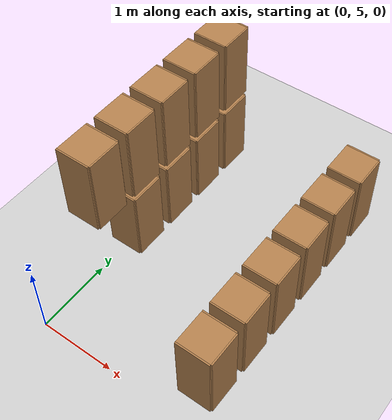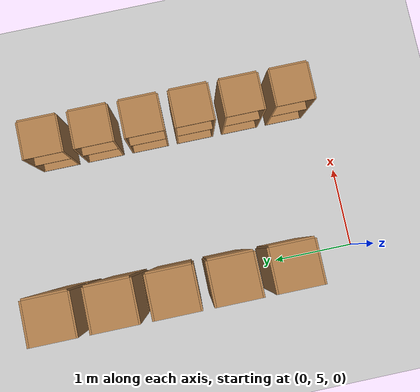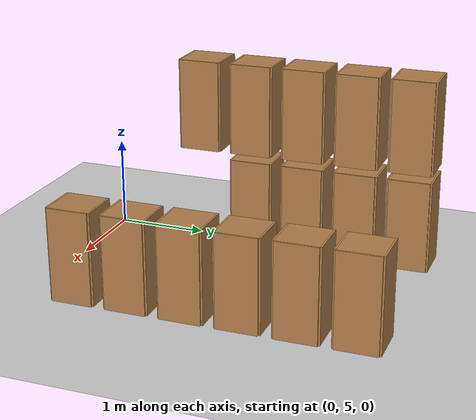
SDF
<sdf version="1.7">
 <world name="default">
  <model name="ground_plane">
   <static>1</static>
   <link name="link">
    <collision name="collision">
     <geometry><plane><normal>0 0 1</normal><size>100 100</size></plane></geometry>
     <surface><friction><ode><mu>100</mu><mu2>50</mu2></ode></friction></surface>
    </collision>
    <visual name="visual">
     <cast_shadows>0</cast_shadows>
     <geometry><plane><normal>0 0 1</normal><size>100 100</size></plane></geometry>
     <material>
      <script><uri>file://media/materials/scripts/gazebo.material</uri><name>Gazebo/Grey</name></script>
     </material>
    </visual>
   </link>
  </model>
  <model name="cabinet_5">
   <static>1</static>
   <link name="cabinet_bottom_plate">
    <inertial>
     <pose>0 0 -1 0 -0 0</pose>
     <inertia><ixx>2.05</ixx><ixy>0</ixy><ixz>0</ixz><iyy>2.05</iyy><iyz>0</iyz><izz>2.05</izz></inertia>
     <mass>25</mass>
    </inertial>
    <collision name="cabinet_bottom_plate_geom">
     <pose>0 0 0.01 0 -0 0</pose>
     <geometry><box><size>0.45 0.45 0.02</size></box></geometry>
    </collision>
    <visual name="cabinet_bottom_plate_geom_visual">
     <pose>0 0 0.01 0 -0 0</pose>
     <geometry><box><size>0.45 0.45 0.02</size></box></geometry>
     <material>
      <script><uri>file://media/materials/scripts/gazebo.material</uri><name>Gazebo/Wood</name></script>
     </material>
    </visual>
    <collision name="cabinet_bottom_plate_geom_cabinet_back_plate">
     <pose>0.235 0 0.51 0 -0 0</pose>
     <geometry><box><size>0.02 0.45 1.02</size></box></geometry>
    </collision>
    <visual name="cabinet_bottom_plate_geom_cabinet_back_plate_visual">
     <pose>0.235 0 0.51 0 -0 0</pose>
     <geometry><box><size>0.02 0.45 1.02</size></box></geometry>
     <material>
      <script><uri>file://media/materials/scripts/gazebo.material</uri><name>Gazebo/Wood</name></script>
     </material>
    </visual>
    <collision name="cabinet_bottom_plate_geom_cabinet_left_plate">
     <pose>0 0.235 0.51 0 -0 0</pose>
     <geometry><box><size>0.45 0.02 1.02</size></box></geometry>
    </collision>
    <visual name="cabinet_bottom_plate_geom_cabinet_left_plate_visual">
     <pose>0 0.235 0.51 0 -0 0</pose>
     <geometry><box><size>0.45 0.02 1.02</size></box></geometry>
     <material>
      <script><uri>file://media/materials/scripts/gazebo.material</uri><name>Gazebo/Wood</name></script>
     </material>
    </visual>
    <collision name="cabinet_bottom_plate_geom_cabinet_middle_plate">
     <pose>0 0 0.51 0 -0 0</pose>
     <geometry><box><size>0.45 0.45 0.02</size></box></geometry>
    </collision>
    <visual name="cabinet_bottom_plate_geom_cabinet_middle_plate_visual">
     <pose>0 0 0.51 0 -0 0</pose>
     <geometry><box><size>0.45 0.45 0.02</size></box></geometry>
     <material>
      <script><uri>file://media/materials/scripts/gazebo.material</uri><name>Gazebo/Wood</name></script>
     </material>
    </visual>
    <collision name="cabinet_bottom_plate_geom_cabinet_right_plate">
     <pose>0 -0.235 0.51 0 -0 0</pose>
     <geometry><box><size>0.45 0.02 1.02</size></box></geometry>
    </collision>
    <visual name="cabinet_bottom_plate_geom_cabinet_right_plate_visual">
     <pose>0 -0.235 0.51 0 -0 0</pose>
     <geometry><box><size>0.45 0.02 1.02</size></box></geometry>
     <material>
      <script><uri>file://media/materials/scripts/gazebo.material</uri><name>Gazebo/Wood</name></script>
     </material>
    </visual>
    <collision name="cabinet_bottom_plate_geom_cabinet_top_plate">
     <pose>0 0 1.01 0 -0 0</pose>
     <geometry><box><size>0.45 0.45 0.02</size></box></geometry>
    </collision>
    <visual name="cabinet_bottom_plate_geom_cabinet_top_plate_visual">
     <pose>0 0 1.01 0 -0 0</pose>
     <geometry><box><size>0.45 0.45 0.02</size></box></geometry>
     <material>
      <script><uri>file://media/materials/scripts/gazebo.material</uri><name>Gazebo/Wood</name></script>
     </material>
    </visual>
   </link>
   <pose>2 5.5 0 0 -0 0</pose>
  </model>
  <model name="cabinet_6">
   <static>1</static>
   <link name="cabinet_bottom_plate">
    <inertial>
     <pose>0 0 -1 0 -0 0</pose>
     <inertia><ixx>2.05</ixx><ixy>0</ixy><ixz>0</ixz><iyy>2.05</iyy><iyz>0</iyz><izz>2.05</izz></inertia>
     <mass>25</mass>
    </inertial>
    <collision name="cabinet_bottom_plate_geom">
     <pose>0 0 0.01 0 -0 0</pose>
     <geometry><box><size>0.45 0.45 0.02</size></box></geometry>
    </collision>
    <visual name="cabinet_bottom_plate_geom_visual">
     <pose>0 0 0.01 0 -0 0</pose>
     <geometry><box><size>0.45 0.45 0.02</size></box></geometry>
     <material>
      <script><uri>file://media/materials/scripts/gazebo.material</uri><name>Gazebo/Wood</name></script>
     </material>
    </visual>
    <collision name="cabinet_bottom_plate_geom_cabinet_back_plate">
     <pose>0.235 0 0.51 0 -0 0</pose>
     <geometry><box><size>0.02 0.45 1.02</size></box></geometry>
    </collision>
    <visual name="cabinet_bottom_plate_geom_cabinet_back_plate_visual">
     <pose>0.235 0 0.51 0 -0 0</pose>
     <geometry><box><size>0.02 0.45 1.02</size></box></geometry>
     <material>
      <script><uri>file://media/materials/scripts/gazebo.material</uri><name>Gazebo/Wood</name></script>
     </material>
    </visual>
    <collision name="cabinet_bottom_plate_geom_cabinet_left_plate">
     <pose>0 0.235 0.51 0 -0 0</pose>
     <geometry><box><size>0.45 0.02 1.02</size></box></geometry>
    </collision>
    <visual name="cabinet_bottom_plate_geom_cabinet_left_plate_visual">
     <pose>0 0.235 0.51 0 -0 0</pose>
     <geometry><box><size>0.45 0.02 1.02</size></box></geometry>
     <material>
      <script><uri>file://media/materials/scripts/gazebo.material</uri><name>Gazebo/Wood</name></script>
     </material>
    </visual>
    <collision name="cabinet_bottom_plate_geom_cabinet_middle_plate">
     <pose>0 0 0.51 0 -0 0</pose>
     <geometry><box><size>0.45 0.45 0.02</size></box></geometry>
    </collision>
    <visual name="cabinet_bottom_plate_geom_cabinet_middle_plate_visual">
     <pose>0 0 0.51 0 -0 0</pose>
     <geometry><box><size>0.45 0.45 0.02</size></box></geometry>
     <material>
      <script><uri>file://media/materials/scripts/gazebo.material</uri><name>Gazebo/Wood</name></script>
     </material>
    </visual>
    <collision name="cabinet_bottom_plate_geom_cabinet_right_plate">
     <pose>0 -0.235 0.51 0 -0 0</pose>
     <geometry><box><size>0.45 0.02 1.02</size></box></geometry>
    </collision>
    <visual name="cabinet_bottom_plate_geom_cabinet_right_plate_visual">
     <pose>0 -0.235 0.51 0 -0 0</pose>
     <geometry><box><size>0.45 0.02 1.02</size></box></geometry>
     <material>
      <script><uri>file://media/materials/scripts/gazebo.material</uri><name>Gazebo/Wood</name></script>
     </material>
    </visual>
    <collision name="cabinet_bottom_plate_geom_cabinet_top_plate">
     <pose>0 0 1.01 0 -0 0</pose>
     <geometry><box><size>0.45 0.45 0.02</size></box></geometry>
    </collision>
    <visual name="cabinet_bottom_plate_geom_cabinet_top_plate_visual">
     <pose>0 0 1.01 0 -0 0</pose>
     <geometry><box><size>0.45 0.45 0.02</size></box></geometry>
     <material>
      <script><uri>file://media/materials/scripts/gazebo.material</uri><name>Gazebo/Wood</name></script>
     </material>
    </visual>
   </link>
   <pose>2 6.1 0 0 -0 0</pose>
  </model>
  <model name="cabinet_7">
   <static>1</static>
   <link name="cabinet_bottom_plate">
    <inertial>
     <pose>0 0 -1 0 -0 0</pose>
     <inertia><ixx>2.05</ixx><ixy>0</ixy><ixz>0</ixz><iyy>2.05</iyy><iyz>0</iyz><izz>2.05</izz></inertia>
     <mass>25</mass>
    </inertial>
    <collision name="cabinet_bottom_plate_geom">
     <pose>0 0 0.01 0 -0 0</pose>
     <geometry><box><size>0.45 0.45 0.02</size></box></geometry>
    </collision>
    <visual name="cabinet_bottom_plate_geom_visual">
     <pose>0 0 0.01 0 -0 0</pose>
     <geometry><box><size>0.45 0.45 0.02</size></box></geometry>
     <material>
      <script><uri>file://media/materials/scripts/gazebo.material</uri><name>Gazebo/Wood</name></script>
     </material>
    </visual>
    <collision name="cabinet_bottom_plate_geom_cabinet_back_plate">
     <pose>0.235 0 0.51 0 -0 0</pose>
     <geometry><box><size>0.02 0.45 1.02</size></box></geometry>
    </collision>
    <visual name="cabinet_bottom_plate_geom_cabinet_back_plate_visual">
     <pose>0.235 0 0.51 0 -0 0</pose>
     <geometry><box><size>0.02 0.45 1.02</size></box></geometry>
     <material>
      <script><uri>file://media/materials/scripts/gazebo.material</uri><name>Gazebo/Wood</name></script>
     </material>
    </visual>
    <collision name="cabinet_bottom_plate_geom_cabinet_left_plate">
     <pose>0 0.235 0.51 0 -0 0</pose>
     <geometry><box><size>0.45 0.02 1.02</size></box></geometry>
    </collision>
    <visual name="cabinet_bottom_plate_geom_cabinet_left_plate_visual">
     <pose>0 0.235 0.51 0 -0 0</pose>
     <geometry><box><size>0.45 0.02 1.02</size></box></geometry>
     <material>
      <script><uri>file://media/materials/scripts/gazebo.material</uri><name>Gazebo/Wood</name></script>
     </material>
    </visual>
    <collision name="cabinet_bottom_plate_geom_cabinet_middle_plate">
     <pose>0 0 0.51 0 -0 0</pose>
     <geometry><box><size>0.45 0.45 0.02</size></box></geometry>
    </collision>
    <visual name="cabinet_bottom_plate_geom_cabinet_middle_plate_visual">
     <pose>0 0 0.51 0 -0 0</pose>
     <geometry><box><size>0.45 0.45 0.02</size></box></geometry>
     <material>
      <script><uri>file://media/materials/scripts/gazebo.material</uri><name>Gazebo/Wood</name></script>
     </material>
    </visual>
    <collision name="cabinet_bottom_plate_geom_cabinet_right_plate">
     <pose>0 -0.235 0.51 0 -0 0</pose>
     <geometry><box><size>0.45 0.02 1.02</size></box></geometry>
    </collision>
    <visual name="cabinet_bottom_plate_geom_cabinet_right_plate_visual">
     <pose>0 -0.235 0.51 0 -0 0</pose>
     <geometry><box><size>0.45 0.02 1.02</size></box></geometry>
     <material>
      <script><uri>file://media/materials/scripts/gazebo.material</uri><name>Gazebo/Wood</name></script>
     </material>
    </visual>
    <collision name="cabinet_bottom_plate_geom_cabinet_top_plate">
     <pose>0 0 1.01 0 -0 0</pose>
     <geometry><box><size>0.45 0.45 0.02</size></box></geometry>
    </collision>
    <visual name="cabinet_bottom_plate_geom_cabinet_top_plate_visual">
     <pose>0 0 1.01 0 -0 0</pose>
     <geometry><box><size>0.45 0.45 0.02</size></box></geometry>
     <material>
      <script><uri>file://media/materials/scripts/gazebo.material</uri><name>Gazebo/Wood</name></script>
     </material>
    </visual>
   </link>
   <pose>2 6.7 0 0 -0 0</pose>
  </model>
  <model name="cabinet_8">
   <static>1</static>
   <link name="cabinet_bottom_plate">
    <inertial>
     <pose>0 0 -1 0 -0 0</pose>
     <inertia><ixx>2.05</ixx><ixy>0</ixy><ixz>0</ixz><iyy>2.05</iyy><iyz>0</iyz><izz>2.05</izz></inertia>
     <mass>25</mass>
    </inertial>
    <collision name="cabinet_bottom_plate_geom">
     <pose>0 0 0.01 0 -0 0</pose>
     <geometry><box><size>0.45 0.45 0.02</size></box></geometry>
    </collision>
    <visual name="cabinet_bottom_plate_geom_visual">
     <pose>0 0 0.01 0 -0 0</pose>
     <geometry><box><size>0.45 0.45 0.02</size></box></geometry>
     <material>
      <script><uri>file://media/materials/scripts/gazebo.material</uri><name>Gazebo/Wood</name></script>
     </material>
    </visual>
    <collision name="cabinet_bottom_plate_geom_cabinet_back_plate">
     <pose>0.235 0 0.51 0 -0 0</pose>
     <geometry><box><size>0.02 0.45 1.02</size></box></geometry>
    </collision>
    <visual name="cabinet_bottom_plate_geom_cabinet_back_plate_visual">
     <pose>0.235 0 0.51 0 -0 0</pose>
     <geometry><box><size>0.02 0.45 1.02</size></box></geometry>
     <material>
      <script><uri>file://media/materials/scripts/gazebo.material</uri><name>Gazebo/Wood</name></script>
     </material>
    </visual>
    <collision name="cabinet_bottom_plate_geom_cabinet_left_plate">
     <pose>0 0.235 0.51 0 -0 0</pose>
     <geometry><box><size>0.45 0.02 1.02</size></box></geometry>
    </collision>
    <visual name="cabinet_bottom_plate_geom_cabinet_left_plate_visual">
     <pose>0 0.235 0.51 0 -0 0</pose>
     <geometry><box><size>0.45 0.02 1.02</size></box></geometry>
     <material>
      <script><uri>file://media/materials/scripts/gazebo.material</uri><name>Gazebo/Wood</name></script>
     </material>
    </visual>
    <collision name="cabinet_bottom_plate_geom_cabinet_middle_plate">
     <pose>0 0 0.51 0 -0 0</pose>
     <geometry><box><size>0.45 0.45 0.02</size></box></geometry>
    </collision>
    <visual name="cabinet_bottom_plate_geom_cabinet_middle_plate_visual">
     <pose>0 0 0.51 0 -0 0</pose>
     <geometry><box><size>0.45 0.45 0.02</size></box></geometry>
     <material>
      <script><uri>file://media/materials/scripts/gazebo.material</uri><name>Gazebo/Wood</name></script>
     </material>
    </visual>
    <collision name="cabinet_bottom_plate_geom_cabinet_right_plate">
     <pose>0 -0.235 0.51 0 -0 0</pose>
     <geometry><box><size>0.45 0.02 1.02</size></box></geometry>
    </collision>
    <visual name="cabinet_bottom_plate_geom_cabinet_right_plate_visual">
     <pose>0 -0.235 0.51 0 -0 0</pose>
     <geometry><box><size>0.45 0.02 1.02</size></box></geometry>
     <material>
      <script><uri>file://media/materials/scripts/gazebo.material</uri><name>Gazebo/Wood</name></script>
     </material>
    </visual>
    <collision name="cabinet_bottom_plate_geom_cabinet_top_plate">
     <pose>0 0 1.01 0 -0 0</pose>
     <geometry><box><size>0.45 0.45 0.02</size></box></geometry>
    </collision>
    <visual name="cabinet_bottom_plate_geom_cabinet_top_plate_visual">
     <pose>0 0 1.01 0 -0 0</pose>
     <geometry><box><size>0.45 0.45 0.02</size></box></geometry>
     <material>
      <script><uri>file://media/materials/scripts/gazebo.material</uri><name>Gazebo/Wood</name></script>
     </material>
    </visual>
   </link>
   <pose>2 7.3 0 0 -0 0</pose>
  </model>
  <model name="cabinet_9">
   <static>1</static>
   <link name="cabinet_bottom_plate">
    <inertial>
     <pose>0 0 -1 0 -0 0</pose>
     <inertia><ixx>2.05</ixx><ixy>0</ixy><ixz>0</ixz><iyy>2.05</iyy><iyz>0</iyz><izz>2.05</izz></inertia>
     <mass>25</mass>
    </inertial>
    <collision name="cabinet_bottom_plate_geom">
     <pose>0 0 0.01 0 -0 0</pose>
     <geometry><box><size>0.45 0.45 0.02</size></box></geometry>
    </collision>
    <visual name="cabinet_bottom_plate_geom_visual">
     <pose>0 0 0.01 0 -0 0</pose>
     <geometry><box><size>0.45 0.45 0.02</size></box></geometry>
     <material>
      <script><uri>file://media/materials/scripts/gazebo.material</uri><name>Gazebo/Wood</name></script>
     </material>
    </visual>
    <collision name="cabinet_bottom_plate_geom_cabinet_back_plate">
     <pose>0.235 0 0.51 0 -0 0</pose>
     <geometry><box><size>0.02 0.45 1.02</size></box></geometry>
    </collision>
    <visual name="cabinet_bottom_plate_geom_cabinet_back_plate_visual">
     <pose>0.235 0 0.51 0 -0 0</pose>
     <geometry><box><size>0.02 0.45 1.02</size></box></geometry>
     <material>
      <script><uri>file://media/materials/scripts/gazebo.material</uri><name>Gazebo/Wood</name></script>
     </material>
    </visual>
    <collision name="cabinet_bottom_plate_geom_cabinet_left_plate">
     <pose>0 0.235 0.51 0 -0 0</pose>
     <geometry><box><size>0.45 0.02 1.02</size></box></geometry>
    </collision>
    <visual name="cabinet_bottom_plate_geom_cabinet_left_plate_visual">
     <pose>0 0.235 0.51 0 -0 0</pose>
     <geometry><box><size>0.45 0.02 1.02</size></box></geometry>
     <material>
      <script><uri>file://media/materials/scripts/gazebo.material</uri><name>Gazebo/Wood</name></script>
     </material>
    </visual>
    <collision name="cabinet_bottom_plate_geom_cabinet_middle_plate">
     <pose>0 0 0.51 0 -0 0</pose>
     <geometry><box><size>0.45 0.45 0.02</size></box></geometry>
    </collision>
    <visual name="cabinet_bottom_plate_geom_cabinet_middle_plate_visual">
     <pose>0 0 0.51 0 -0 0</pose>
     <geometry><box><size>0.45 0.45 0.02</size></box></geometry>
     <material>
      <script><uri>file://media/materials/scripts/gazebo.material</uri><name>Gazebo/Wood</name></script>
     </material>
    </visual>
    <collision name="cabinet_bottom_plate_geom_cabinet_right_plate">
     <pose>0 -0.235 0.51 0 -0 0</pose>
     <geometry><box><size>0.45 0.02 1.02</size></box></geometry>
    </collision>
    <visual name="cabinet_bottom_plate_geom_cabinet_right_plate_visual">
     <pose>0 -0.235 0.51 0 -0 0</pose>
     <geometry><box><size>0.45 0.02 1.02</size></box></geometry>
     <material>
      <script><uri>file://media/materials/scripts/gazebo.material</uri><name>Gazebo/Wood</name></script>
     </material>
    </visual>
    <collision name="cabinet_bottom_plate_geom_cabinet_top_plate">
     <pose>0 0 1.01 0 -0 0</pose>
     <geometry><box><size>0.45 0.45 0.02</size></box></geometry>
    </collision>
    <visual name="cabinet_bottom_plate_geom_cabinet_top_plate_visual">
     <pose>0 0 1.01 0 -0 0</pose>
     <geometry><box><size>0.45 0.45 0.02</size></box></geometry>
     <material>
      <script><uri>file://media/materials/scripts/gazebo.material</uri><name>Gazebo/Wood</name></script>
     </material>
    </visual>
   </link>
   <pose>0 7.3 0 0 -0 0</pose>
  </model>
  <model name="cabinet_10">
   <static>1</static>
   <link name="cabinet_bottom_plate">
    <inertial>
     <pose>0 0 -1 0 -0 0</pose>
     <inertia><ixx>2.05</ixx><ixy>0</ixy><ixz>0</ixz><iyy>2.05</iyy><iyz>0</iyz><izz>2.05</izz></inertia>
     <mass>25</mass>
    </inertial>
    <collision name="cabinet_bottom_plate_geom">
     <pose>0 0 0.01 0 -0 0</pose>
     <geometry><box><size>0.45 0.45 0.02</size></box></geometry>
    </collision>
    <visual name="cabinet_bottom_plate_geom_visual">
     <pose>0 0 0.01 0 -0 0</pose>
     <geometry><box><size>0.45 0.45 0.02</size></box></geometry>
     <material>
      <script><uri>file://media/materials/scripts/gazebo.material</uri><name>Gazebo/Wood</name></script>
     </material>
    </visual>
    <collision name="cabinet_bottom_plate_geom_cabinet_back_plate">
     <pose>0.235 0 0.51 0 -0 0</pose>
     <geometry><box><size>0.02 0.45 1.02</size></box></geometry>
    </collision>
    <visual name="cabinet_bottom_plate_geom_cabinet_back_plate_visual">
     <pose>0.235 0 0.51 0 -0 0</pose>
     <geometry><box><size>0.02 0.45 1.02</size></box></geometry>
     <material>
      <script><uri>file://media/materials/scripts/gazebo.material</uri><name>Gazebo/Wood</name></script>
     </material>
    </visual>
    <collision name="cabinet_bottom_plate_geom_cabinet_left_plate">
     <pose>0 0.235 0.51 0 -0 0</pose>
     <geometry><box><size>0.45 0.02 1.02</size></box></geometry>
    </collision>
    <visual name="cabinet_bottom_plate_geom_cabinet_left_plate_visual">
     <pose>0 0.235 0.51 0 -0 0</pose>
     <geometry><box><size>0.45 0.02 1.02</size></box></geometry>
     <material>
      <script><uri>file://media/materials/scripts/gazebo.material</uri><name>Gazebo/Wood</name></script>
     </material>
    </visual>
    <collision name="cabinet_bottom_plate_geom_cabinet_middle_plate">
     <pose>0 0 0.51 0 -0 0</pose>
     <geometry><box><size>0.45 0.45 0.02</size></box></geometry>
    </collision>
    <visual name="cabinet_bottom_plate_geom_cabinet_middle_plate_visual">
     <pose>0 0 0.51 0 -0 0</pose>
     <geometry><box><size>0.45 0.45 0.02</size></box></geometry>
     <material>
      <script><uri>file://media/materials/scripts/gazebo.material</uri><name>Gazebo/Wood</name></script>
     </material>
    </visual>
    <collision name="cabinet_bottom_plate_geom_cabinet_right_plate">
     <pose>0 -0.235 0.51 0 -0 0</pose>
     <geometry><box><size>0.45 0.02 1.02</size></box></geometry>
    </collision>
    <visual name="cabinet_bottom_plate_geom_cabinet_right_plate_visual">
     <pose>0 -0.235 0.51 0 -0 0</pose>
     <geometry><box><size>0.45 0.02 1.02</size></box></geometry>
     <material>
      <script><uri>file://media/materials/scripts/gazebo.material</uri><name>Gazebo/Wood</name></script>
     </material>
    </visual>
    <collision name="cabinet_bottom_plate_geom_cabinet_top_plate">
     <pose>0 0 1.01 0 -0 0</pose>
     <geometry><box><size>0.45 0.45 0.02</size></box></geometry>
    </collision>
    <visual name="cabinet_bottom_plate_geom_cabinet_top_plate_visual">
     <pose>0 0 1.01 0 -0 0</pose>
     <geometry><box><size>0.45 0.45 0.02</size></box></geometry>
     <material>
      <script><uri>file://media/materials/scripts/gazebo.material</uri><name>Gazebo/Wood</name></script>
     </material>
    </visual>
   </link>
   <pose>2 8.5 0 0 -0 0</pose>
  </model>
  <model name="cabinet_12">
   <static>1</static>
   <link name="cabinet_bottom_plate">
    <inertial>
     <pose>0 0 -1 0 -0 0</pose>
     <inertia><ixx>2.05</ixx><ixy>0</ixy><ixz>0</ixz><iyy>2.05</iyy><iyz>0</iyz><izz>2.05</izz></inertia>
     <mass>25</mass>
    </inertial>
    <collision name="cabinet_bottom_plate_geom">
     <pose>0 0 0.01 0 -0 0</pose>
     <geometry><box><size>0.45 0.45 0.02</size></box></geometry>
    </collision>
    <visual name="cabinet_bottom_plate_geom_visual">
     <pose>0 0 0.01 0 -0 0</pose>
     <geometry><box><size>0.45 0.45 0.02</size></box></geometry>
     <material>
      <script><uri>file://media/materials/scripts/gazebo.material</uri><name>Gazebo/Wood</name></script>
     </material>
    </visual>
    <collision name="cabinet_bottom_plate_geom_cabinet_back_plate">
     <pose>0.235 0 0.51 0 -0 0</pose>
     <geometry><box><size>0.02 0.45 1.02</size></box></geometry>
    </collision>
    <visual name="cabinet_bottom_plate_geom_cabinet_back_plate_visual">
     <pose>0.235 0 0.51 0 -0 0</pose>
     <geometry><box><size>0.02 0.45 1.02</size></box></geometry>
     <material>
      <script><uri>file://media/materials/scripts/gazebo.material</uri><name>Gazebo/Wood</name></script>
     </material>
    </visual>
    <collision name="cabinet_bottom_plate_geom_cabinet_left_plate">
     <pose>0 0.235 0.51 0 -0 0</pose>
     <geometry><box><size>0.45 0.02 1.02</size></box></geometry>
    </collision>
    <visual name="cabinet_bottom_plate_geom_cabinet_left_plate_visual">
     <pose>0 0.235 0.51 0 -0 0</pose>
     <geometry><box><size>0.45 0.02 1.02</size></box></geometry>
     <material>
      <script><uri>file://media/materials/scripts/gazebo.material</uri><name>Gazebo/Wood</name></script>
     </material>
    </visual>
    <collision name="cabinet_bottom_plate_geom_cabinet_middle_plate">
     <pose>0 0 0.51 0 -0 0</pose>
     <geometry><box><size>0.45 0.45 0.02</size></box></geometry>
    </collision>
    <visual name="cabinet_bottom_plate_geom_cabinet_middle_plate_visual">
     <pose>0 0 0.51 0 -0 0</pose>
     <geometry><box><size>0.45 0.45 0.02</size></box></geometry>
     <material>
      <script><uri>file://media/materials/scripts/gazebo.material</uri><name>Gazebo/Wood</name></script>
     </material>
    </visual>
    <collision name="cabinet_bottom_plate_geom_cabinet_right_plate">
     <pose>0 -0.235 0.51 0 -0 0</pose>
     <geometry><box><size>0.45 0.02 1.02</size></box></geometry>
    </collision>
    <visual name="cabinet_bottom_plate_geom_cabinet_right_plate_visual">
     <pose>0 -0.235 0.51 0 -0 0</pose>
     <geometry><box><size>0.45 0.02 1.02</size></box></geometry>
     <material>
      <script><uri>file://media/materials/scripts/gazebo.material</uri><name>Gazebo/Wood</name></script>
     </material>
    </visual>
    <collision name="cabinet_bottom_plate_geom_cabinet_top_plate">
     <pose>0 0 1.01 0 -0 0</pose>
     <geometry><box><size>0.45 0.45 0.02</size></box></geometry>
    </collision>
    <visual name="cabinet_bottom_plate_geom_cabinet_top_plate_visual">
     <pose>0 0 1.01 0 -0 0</pose>
     <geometry><box><size>0.45 0.45 0.02</size></box></geometry>
     <material>
      <script><uri>file://media/materials/scripts/gazebo.material</uri><name>Gazebo/Wood</name></script>
     </material>
    </visual>
   </link>
   <pose>0 6.7 0 0 -0 0</pose>
  </model>
  <model name="cabinet_17">
   <static>1</static>
   <link name="cabinet_bottom_plate">
    <inertial>
     <pose>0 0 -1 0 -0 0</pose>
     <inertia><ixx>2.05</ixx><ixy>0</ixy><ixz>0</ixz><iyy>2.05</iyy><iyz>0</iyz><izz>2.05</izz></inertia>
     <mass>25</mass>
    </inertial>
    <collision name="cabinet_bottom_plate_geom">
     <pose>0 0 0.01 0 -0 0</pose>
     <geometry><box><size>0.45 0.45 0.02</size></box></geometry>
    </collision>
    <visual name="cabinet_bottom_plate_geom_visual">
     <pose>0 0 0.01 0 -0 0</pose>
     <geometry><box><size>0.45 0.45 0.02</size></box></geometry>
     <material>
      <script><uri>file://media/materials/scripts/gazebo.material</uri><name>Gazebo/Wood</name></script>
     </material>
    </visual>
    <collision name="cabinet_bottom_plate_geom_cabinet_back_plate">
     <pose>0.235 0 0.51 0 -0 0</pose>
     <geometry><box><size>0.02 0.45 1.02</size></box></geometry>
    </collision>
    <visual name="cabinet_bottom_plate_geom_cabinet_back_plate_visual">
     <pose>0.235 0 0.51 0 -0 0</pose>
     <geometry><box><size>0.02 0.45 1.02</size></box></geometry>
     <material>
      <script><uri>file://media/materials/scripts/gazebo.material</uri><name>Gazebo/Wood</name></script>
     </material>
    </visual>
    <collision name="cabinet_bottom_plate_geom_cabinet_left_plate">
     <pose>0 0.235 0.51 0 -0 0</pose>
     <geometry><box><size>0.45 0.02 1.02</size></box></geometry>
    </collision>
    <visual name="cabinet_bottom_plate_geom_cabinet_left_plate_visual">
     <pose>0 0.235 0.51 0 -0 0</pose>
     <geometry><box><size>0.45 0.02 1.02</size></box></geometry>
     <material>
      <script><uri>file://media/materials/scripts/gazebo.material</uri><name>Gazebo/Wood</name></script>
     </material>
    </visual>
    <collision name="cabinet_bottom_plate_geom_cabinet_middle_plate">
     <pose>0 0 0.51 0 -0 0</pose>
     <geometry><box><size>0.45 0.45 0.02</size></box></geometry>
    </collision>
    <visual name="cabinet_bottom_plate_geom_cabinet_middle_plate_visual">
     <pose>0 0 0.51 0 -0 0</pose>
     <geometry><box><size>0.45 0.45 0.02</size></box></geometry>
     <material>
      <script><uri>file://media/materials/scripts/gazebo.material</uri><name>Gazebo/Wood</name></script>
     </material>
    </visual>
    <collision name="cabinet_bottom_plate_geom_cabinet_right_plate">
     <pose>0 -0.235 0.51 0 -0 0</pose>
     <geometry><box><size>0.45 0.02 1.02</size></box></geometry>
    </collision>
    <visual name="cabinet_bottom_plate_geom_cabinet_right_plate_visual">
     <pose>0 -0.235 0.51 0 -0 0</pose>
     <geometry><box><size>0.45 0.02 1.02</size></box></geometry>
     <material>
      <script><uri>file://media/materials/scripts/gazebo.material</uri><name>Gazebo/Wood</name></script>
     </material>
    </visual>
    <collision name="cabinet_bottom_plate_geom_cabinet_top_plate">
     <pose>0 0 1.01 0 -0 0</pose>
     <geometry><box><size>0.45 0.45 0.02</size></box></geometry>
    </collision>
    <visual name="cabinet_bottom_plate_geom_cabinet_top_plate_visual">
     <pose>0 0 1.01 0 -0 0</pose>
     <geometry><box><size>0.45 0.45 0.02</size></box></geometry>
     <material>
      <script><uri>file://media/materials/scripts/gazebo.material</uri><name>Gazebo/Wood</name></script>
     </material>
    </visual>
   </link>
   <pose>2 7.9 0 0 -0 0</pose>
  </model>
  <model name="cabinet_18">
   <static>1</static>
   <link name="cabinet_bottom_plate">
    <inertial>
     <pose>0 0 -1 0 -0 0</pose>
     <inertia><ixx>2.05</ixx><ixy>0</ixy><ixz>0</ixz><iyy>2.05</iyy><iyz>0</iyz><izz>2.05</izz></inertia>
     <mass>25</mass>
    </inertial>
    <collision name="cabinet_bottom_plate_geom">
     <pose>0 0 0.01 0 -0 0</pose>
     <geometry><box><size>0.45 0.45 0.02</size></box></geometry>
    </collision>
    <visual name="cabinet_bottom_plate_geom_visual">
     <pose>0 0 0.01 0 -0 0</pose>
     <geometry><box><size>0.45 0.45 0.02</size></box></geometry>
     <material>
      <script><uri>file://media/materials/scripts/gazebo.material</uri><name>Gazebo/Wood</name></script>
     </material>
    </visual>
    <collision name="cabinet_bottom_plate_geom_cabinet_back_plate">
     <pose>0.235 0 0.51 0 -0 0</pose>
     <geometry><box><size>0.02 0.45 1.02</size></box></geometry>
    </collision>
    <visual name="cabinet_bottom_plate_geom_cabinet_back_plate_visual">
     <pose>0.235 0 0.51 0 -0 0</pose>
     <geometry><box><size>0.02 0.45 1.02</size></box></geometry>
     <material>
      <script><uri>file://media/materials/scripts/gazebo.material</uri><name>Gazebo/Wood</name></script>
     </material>
    </visual>
    <collision name="cabinet_bottom_plate_geom_cabinet_left_plate">
     <pose>0 0.235 0.51 0 -0 0</pose>
     <geometry><box><size>0.45 0.02 1.02</size></box></geometry>
    </collision>
    <visual name="cabinet_bottom_plate_geom_cabinet_left_plate_visual">
     <pose>0 0.235 0.51 0 -0 0</pose>
     <geometry><box><size>0.45 0.02 1.02</size></box></geometry>
     <material>
      <script><uri>file://media/materials/scripts/gazebo.material</uri><name>Gazebo/Wood</name></script>
     </material>
    </visual>
    <collision name="cabinet_bottom_plate_geom_cabinet_middle_plate">
     <pose>0 0 0.51 0 -0 0</pose>
     <geometry><box><size>0.45 0.45 0.02</size></box></geometry>
    </collision>
    <visual name="cabinet_bottom_plate_geom_cabinet_middle_plate_visual">
     <pose>0 0 0.51 0 -0 0</pose>
     <geometry><box><size>0.45 0.45 0.02</size></box></geometry>
     <material>
      <script><uri>file://media/materials/scripts/gazebo.material</uri><name>Gazebo/Wood</name></script>
     </material>
    </visual>
    <collision name="cabinet_bottom_plate_geom_cabinet_right_plate">
     <pose>0 -0.235 0.51 0 -0 0</pose>
     <geometry><box><size>0.45 0.02 1.02</size></box></geometry>
    </collision>
    <visual name="cabinet_bottom_plate_geom_cabinet_right_plate_visual">
     <pose>0 -0.235 0.51 0 -0 0</pose>
     <geometry><box><size>0.45 0.02 1.02</size></box></geometry>
     <material>
      <script><uri>file://media/materials/scripts/gazebo.material</uri><name>Gazebo/Wood</name></script>
     </material>
    </visual>
    <collision name="cabinet_bottom_plate_geom_cabinet_top_plate">
     <pose>0 0 1.01 0 -0 0</pose>
     <geometry><box><size>0.45 0.45 0.02</size></box></geometry>
    </collision>
    <visual name="cabinet_bottom_plate_geom_cabinet_top_plate_visual">
     <pose>0 0 1.01 0 -0 0</pose>
     <geometry><box><size>0.45 0.45 0.02</size></box></geometry>
     <material>
      <script><uri>file://media/materials/scripts/gazebo.material</uri><name>Gazebo/Wood</name></script>
     </material>
    </visual>
   </link>
   <pose>0 7.9 0 0 -0 0</pose>
  </model>
  <model name="cabinet_19">
   <static>1</static>
   <link name="cabinet_bottom_plate">
    <inertial>
     <pose>0 0 -1 0 -0 0</pose>
     <inertia><ixx>2.05</ixx><ixy>0</ixy><ixz>0</ixz><iyy>2.05</iyy><iyz>0</iyz><izz>2.05</izz></inertia>
     <mass>25</mass>
    </inertial>
    <collision name="cabinet_bottom_plate_geom">
     <pose>0 0 0.01 0 -0 0</pose>
     <geometry><box><size>0.45 0.45 0.02</size></box></geometry>
    </collision>
    <visual name="cabinet_bottom_plate_geom_visual">
     <pose>0 0 0.01 0 -0 0</pose>
     <geometry><box><size>0.45 0.45 0.02</size></box></geometry>
     <material>
      <script><uri>file://media/materials/scripts/gazebo.material</uri><name>Gazebo/Wood</name></script>
     </material>
    </visual>
    <collision name="cabinet_bottom_plate_geom_cabinet_back_plate">
     <pose>0.235 0 0.51 0 -0 0</pose>
     <geometry><box><size>0.02 0.45 1.02</size></box></geometry>
    </collision>
    <visual name="cabinet_bottom_plate_geom_cabinet_back_plate_visual">
     <pose>0.235 0 0.51 0 -0 0</pose>
     <geometry><box><size>0.02 0.45 1.02</size></box></geometry>
     <material>
      <script><uri>file://media/materials/scripts/gazebo.material</uri><name>Gazebo/Wood</name></script>
     </material>
    </visual>
    <collision name="cabinet_bottom_plate_geom_cabinet_left_plate">
     <pose>0 0.235 0.51 0 -0 0</pose>
     <geometry><box><size>0.45 0.02 1.02</size></box></geometry>
    </collision>
    <visual name="cabinet_bottom_plate_geom_cabinet_left_plate_visual">
     <pose>0 0.235 0.51 0 -0 0</pose>
     <geometry><box><size>0.45 0.02 1.02</size></box></geometry>
     <material>
      <script><uri>file://media/materials/scripts/gazebo.material</uri><name>Gazebo/Wood</name></script>
     </material>
    </visual>
    <collision name="cabinet_bottom_plate_geom_cabinet_middle_plate">
     <pose>0 0 0.51 0 -0 0</pose>
     <geometry><box><size>0.45 0.45 0.02</size></box></geometry>
    </collision>
    <visual name="cabinet_bottom_plate_geom_cabinet_middle_plate_visual">
     <pose>0 0 0.51 0 -0 0</pose>
     <geometry><box><size>0.45 0.45 0.02</size></box></geometry>
     <material>
      <script><uri>file://media/materials/scripts/gazebo.material</uri><name>Gazebo/Wood</name></script>
     </material>
    </visual>
    <collision name="cabinet_bottom_plate_geom_cabinet_right_plate">
     <pose>0 -0.235 0.51 0 -0 0</pose>
     <geometry><box><size>0.45 0.02 1.02</size></box></geometry>
    </collision>
    <visual name="cabinet_bottom_plate_geom_cabinet_right_plate_visual">
     <pose>0 -0.235 0.51 0 -0 0</pose>
     <geometry><box><size>0.45 0.02 1.02</size></box></geometry>
     <material>
      <script><uri>file://media/materials/scripts/gazebo.material</uri><name>Gazebo/Wood</name></script>
     </material>
    </visual>
    <collision name="cabinet_bottom_plate_geom_cabinet_top_plate">
     <pose>0 0 1.01 0 -0 0</pose>
     <geometry><box><size>0.45 0.45 0.02</size></box></geometry>
    </collision>
    <visual name="cabinet_bottom_plate_geom_cabinet_top_plate_visual">
     <pose>0 0 1.01 0 -0 0</pose>
     <geometry><box><size>0.45 0.45 0.02</size></box></geometry>
     <material>
      <script><uri>file://media/materials/scripts/gazebo.material</uri><name>Gazebo/Wood</name></script>
     </material>
    </visual>
   </link>
   <pose>0 8.5 0 0 -0 0</pose>
  </model>
  <model name="cabinet_86">
   <static>1</static>
   <link name="cabinet_bottom_plate">
    <inertial>
     <pose>0 0 -1 0 -0 0</pose>
     <inertia><ixx>2.05</ixx><ixy>0</ixy><ixz>0</ixz><iyy>2.05</iyy><iyz>0</iyz><izz>2.05</izz></inertia>
     <mass>25</mass>
    </inertial>
    <collision name="cabinet_bottom_plate_geom">
     <pose>0 0 0.01 0 -0 0</pose>
     <geometry><box><size>0.45 0.45 0.02</size></box></geometry>
    </collision>
    <visual name="cabinet_bottom_plate_geom_visual">
     <pose>0 0 0.01 0 -0 0</pose>
     <geometry><box><size>0.45 0.45 0.02</size></box></geometry>
     <material>
      <script><uri>file://media/materials/scripts/gazebo.material</uri><name>Gazebo/Wood</name></script>
     </material>
    </visual>
    <collision name="cabinet_bottom_plate_geom_cabinet_back_plate">
     <pose>0.235 0 0.51 0 -0 0</pose>
     <geometry><box><size>0.02 0.45 1.02</size></box></geometry>
    </collision>
    <visual name="cabinet_bottom_plate_geom_cabinet_back_plate_visual">
     <pose>0.235 0 0.51 0 -0 0</pose>
     <geometry><box><size>0.02 0.45 1.02</size></box></geometry>
     <material>
      <script><uri>file://media/materials/scripts/gazebo.material</uri><name>Gazebo/Wood</name></script>
     </material>
    </visual>
    <collision name="cabinet_bottom_plate_geom_cabinet_left_plate">
     <pose>0 0.235 0.51 0 -0 0</pose>
     <geometry><box><size>0.45 0.02 1.02</size></box></geometry>
    </collision>
    <visual name="cabinet_bottom_plate_geom_cabinet_left_plate_visual">
     <pose>0 0.235 0.51 0 -0 0</pose>
     <geometry><box><size>0.45 0.02 1.02</size></box></geometry>
     <material>
      <script><uri>file://media/materials/scripts/gazebo.material</uri><name>Gazebo/Wood</name></script>
     </material>
    </visual>
    <collision name="cabinet_bottom_plate_geom_cabinet_middle_plate">
     <pose>0 0 0.51 0 -0 0</pose>
     <geometry><box><size>0.45 0.45 0.02</size></box></geometry>
    </collision>
    <visual name="cabinet_bottom_plate_geom_cabinet_middle_plate_visual">
     <pose>0 0 0.51 0 -0 0</pose>
     <geometry><box><size>0.45 0.45 0.02</size></box></geometry>
     <material>
      <script><uri>file://media/materials/scripts/gazebo.material</uri><name>Gazebo/Wood</name></script>
     </material>
    </visual>
    <collision name="cabinet_bottom_plate_geom_cabinet_right_plate">
     <pose>0 -0.235 0.51 0 -0 0</pose>
     <geometry><box><size>0.45 0.02 1.02</size></box></geometry>
    </collision>
    <visual name="cabinet_bottom_plate_geom_cabinet_right_plate_visual">
     <pose>0 -0.235 0.51 0 -0 0</pose>
     <geometry><box><size>0.45 0.02 1.02</size></box></geometry>
     <material>
      <script><uri>file://media/materials/scripts/gazebo.material</uri><name>Gazebo/Wood</name></script>
     </material>
    </visual>
    <collision name="cabinet_bottom_plate_geom_cabinet_top_plate">
     <pose>0 0 1.01 0 -0 0</pose>
     <geometry><box><size>0.45 0.45 0.02</size></box></geometry>
    </collision>
    <visual name="cabinet_bottom_plate_geom_cabinet_top_plate_visual">
     <pose>0 0 1.01 0 -0 0</pose>
     <geometry><box><size>0.45 0.45 0.02</size></box></geometry>
     <material>
      <script><uri>file://media/materials/scripts/gazebo.material</uri><name>Gazebo/Wood</name></script>
     </material>
    </visual>
   </link>
   <pose>0 6.1 1.1 0 -0 0</pose>
  </model>
  <model name="cabinet_99">
   <static>1</static>
   <link name="cabinet_bottom_plate">
    <inertial>
     <pose>0 0 -1 0 -0 0</pose>
     <inertia><ixx>2.05</ixx><ixy>0</ixy><ixz>0</ixz><iyy>2.05</iyy><iyz>0</iyz><izz>2.05</izz></inertia>
     <mass>25</mass>
    </inertial>
    <collision name="cabinet_bottom_plate_geom">
     <pose>0 0 0.01 0 -0 0</pose>
     <geometry><box><size>0.45 0.45 0.02</size></box></geometry>
    </collision>
    <visual name="cabinet_bottom_plate_geom_visual">
     <pose>0 0 0.01 0 -0 0</pose>
     <geometry><box><size>0.45 0.45 0.02</size></box></geometry>
     <material>
      <script><uri>file://media/materials/scripts/gazebo.material</uri><name>Gazebo/Wood</name></script>
     </material>
    </visual>
    <collision name="cabinet_bottom_plate_geom_cabinet_back_plate">
     <pose>0.235 0 0.51 0 -0 0</pose>
     <geometry><box><size>0.02 0.45 1.02</size></box></geometry>
    </collision>
    <visual name="cabinet_bottom_plate_geom_cabinet_back_plate_visual">
     <pose>0.235 0 0.51 0 -0 0</pose>
     <geometry><box><size>0.02 0.45 1.02</size></box></geometry>
     <material>
      <script><uri>file://media/materials/scripts/gazebo.material</uri><name>Gazebo/Wood</name></script>
     </material>
    </visual>
    <collision name="cabinet_bottom_plate_geom_cabinet_left_plate">
     <pose>0 0.235 0.51 0 -0 0</pose>
     <geometry><box><size>0.45 0.02 1.02</size></box></geometry>
    </collision>
    <visual name="cabinet_bottom_plate_geom_cabinet_left_plate_visual">
     <pose>0 0.235 0.51 0 -0 0</pose>
     <geometry><box><size>0.45 0.02 1.02</size></box></geometry>
     <material>
      <script><uri>file://media/materials/scripts/gazebo.material</uri><name>Gazebo/Wood</name></script>
     </material>
    </visual>
    <collision name="cabinet_bottom_plate_geom_cabinet_middle_plate">
     <pose>0 0 0.51 0 -0 0</pose>
     <geometry><box><size>0.45 0.45 0.02</size></box></geometry>
    </collision>
    <visual name="cabinet_bottom_plate_geom_cabinet_middle_plate_visual">
     <pose>0 0 0.51 0 -0 0</pose>
     <geometry><box><size>0.45 0.45 0.02</size></box></geometry>
     <material>
      <script><uri>file://media/materials/scripts/gazebo.material</uri><name>Gazebo/Wood</name></script>
     </material>
    </visual>
    <collision name="cabinet_bottom_plate_geom_cabinet_right_plate">
     <pose>0 -0.235 0.51 0 -0 0</pose>
     <geometry><box><size>0.45 0.02 1.02</size></box></geometry>
    </collision>
    <visual name="cabinet_bottom_plate_geom_cabinet_right_plate_visual">
     <pose>0 -0.235 0.51 0 -0 0</pose>
     <geometry><box><size>0.45 0.02 1.02</size></box></geometry>
     <material>
      <script><uri>file://media/materials/scripts/gazebo.material</uri><name>Gazebo/Wood</name></script>
     </material>
    </visual>
    <collision name="cabinet_bottom_plate_geom_cabinet_top_plate">
     <pose>0 0 1.01 0 -0 0</pose>
     <geometry><box><size>0.45 0.45 0.02</size></box></geometry>
    </collision>
    <visual name="cabinet_bottom_plate_geom_cabinet_top_plate_visual">
     <pose>0 0 1.01 0 -0 0</pose>
     <geometry><box><size>0.45 0.45 0.02</size></box></geometry>
     <material>
      <script><uri>file://media/materials/scripts/gazebo.material</uri><name>Gazebo/Wood</name></script>
     </material>
    </visual>
   </link>
   <pose>0 6.7 1.1 0 -0 0</pose>
  </model>
  <model name="cabinet_100">
   <static>1</static>
   <link name="cabinet_bottom_plate">
    <inertial>
     <pose>0 0 -1 0 -0 0</pose>
     <inertia><ixx>2.05</ixx><ixy>0</ixy><ixz>0</ixz><iyy>2.05</iyy><iyz>0</iyz><izz>2.05</izz></inertia>
     <mass>25</mass>
    </inertial>
    <collision name="cabinet_bottom_plate_geom">
     <pose>0 0 0.01 0 -0 0</pose>
     <geometry><box><size>0.45 0.45 0.02</size></box></geometry>
    </collision>
    <visual name="cabinet_bottom_plate_geom_visual">
     <pose>0 0 0.01 0 -0 0</pose>
     <geometry><box><size>0.45 0.45 0.02</size></box></geometry>
     <material>
      <script><uri>file://media/materials/scripts/gazebo.material</uri><name>Gazebo/Wood</name></script>
     </material>
    </visual>
    <collision name="cabinet_bottom_plate_geom_cabinet_back_plate">
     <pose>0.235 0 0.51 0 -0 0</pose>
     <geometry><box><size>0.02 0.45 1.02</size></box></geometry>
    </collision>
    <visual name="cabinet_bottom_plate_geom_cabinet_back_plate_visual">
     <pose>0.235 0 0.51 0 -0 0</pose>
     <geometry><box><size>0.02 0.45 1.02</size></box></geometry>
     <material>
      <script><uri>file://media/materials/scripts/gazebo.material</uri><name>Gazebo/Wood</name></script>
     </material>
    </visual>
    <collision name="cabinet_bottom_plate_geom_cabinet_left_plate">
     <pose>0 0.235 0.51 0 -0 0</pose>
     <geometry><box><size>0.45 0.02 1.02</size></box></geometry>
    </collision>
    <visual name="cabinet_bottom_plate_geom_cabinet_left_plate_visual">
     <pose>0 0.235 0.51 0 -0 0</pose>
     <geometry><box><size>0.45 0.02 1.02</size></box></geometry>
     <material>
      <script><uri>file://media/materials/scripts/gazebo.material</uri><name>Gazebo/Wood</name></script>
     </material>
    </visual>
    <collision name="cabinet_bottom_plate_geom_cabinet_middle_plate">
     <pose>0 0 0.51 0 -0 0</pose>
     <geometry><box><size>0.45 0.45 0.02</size></box></geometry>
    </collision>
    <visual name="cabinet_bottom_plate_geom_cabinet_middle_plate_visual">
     <pose>0 0 0.51 0 -0 0</pose>
     <geometry><box><size>0.45 0.45 0.02</size></box></geometry>
     <material>
      <script><uri>file://media/materials/scripts/gazebo.material</uri><name>Gazebo/Wood</name></script>
     </material>
    </visual>
    <collision name="cabinet_bottom_plate_geom_cabinet_right_plate">
     <pose>0 -0.235 0.51 0 -0 0</pose>
     <geometry><box><size>0.45 0.02 1.02</size></box></geometry>
    </collision>
    <visual name="cabinet_bottom_plate_geom_cabinet_right_plate_visual">
     <pose>0 -0.235 0.51 0 -0 0</pose>
     <geometry><box><size>0.45 0.02 1.02</size></box></geometry>
     <material>
      <script><uri>file://media/materials/scripts/gazebo.material</uri><name>Gazebo/Wood</name></script>
     </material>
    </visual>
    <collision name="cabinet_bottom_plate_geom_cabinet_top_plate">
     <pose>0 0 1.01 0 -0 0</pose>
     <geometry><box><size>0.45 0.45 0.02</size></box></geometry>
    </collision>
    <visual name="cabinet_bottom_plate_geom_cabinet_top_plate_visual">
     <pose>0 0 1.01 0 -0 0</pose>
     <geometry><box><size>0.45 0.45 0.02</size></box></geometry>
     <material>
      <script><uri>file://media/materials/scripts/gazebo.material</uri><name>Gazebo/Wood</name></script>
     </material>
    </visual>
   </link>
   <pose>0 7.3 1.1 0 -0 0</pose>
  </model>
  <model name="cabinet_101">
   <static>1</static>
   <link name="cabinet_bottom_plate">
    <inertial>
     <pose>0 0 -1 0 -0 0</pose>
     <inertia><ixx>2.05</ixx><ixy>0</ixy><ixz>0</ixz><iyy>2.05</iyy><iyz>0</iyz><izz>2.05</izz></inertia>
     <mass>25</mass>
    </inertial>
    <collision name="cabinet_bottom_plate_geom">
     <pose>0 0 0.01 0 -0 0</pose>
     <geometry><box><size>0.45 0.45 0.02</size></box></geometry>
    </collision>
    <visual name="cabinet_bottom_plate_geom_visual">
     <pose>0 0 0.01 0 -0 0</pose>
     <geometry><box><size>0.45 0.45 0.02</size></box></geometry>
     <material>
      <script><uri>file://media/materials/scripts/gazebo.material</uri><name>Gazebo/Wood</name></script>
     </material>
    </visual>
    <collision name="cabinet_bottom_plate_geom_cabinet_back_plate">
     <pose>0.235 0 0.51 0 -0 0</pose>
     <geometry><box><size>0.02 0.45 1.02</size></box></geometry>
    </collision>
    <visual name="cabinet_bottom_plate_geom_cabinet_back_plate_visual">
     <pose>0.235 0 0.51 0 -0 0</pose>
     <geometry><box><size>0.02 0.45 1.02</size></box></geometry>
     <material>
      <script><uri>file://media/materials/scripts/gazebo.material</uri><name>Gazebo/Wood</name></script>
     </material>
    </visual>
    <collision name="cabinet_bottom_plate_geom_cabinet_left_plate">
     <pose>0 0.235 0.51 0 -0 0</pose>
     <geometry><box><size>0.45 0.02 1.02</size></box></geometry>
    </collision>
    <visual name="cabinet_bottom_plate_geom_cabinet_left_plate_visual">
     <pose>0 0.235 0.51 0 -0 0</pose>
     <geometry><box><size>0.45 0.02 1.02</size></box></geometry>
     <material>
      <script><uri>file://media/materials/scripts/gazebo.material</uri><name>Gazebo/Wood</name></script>
     </material>
    </visual>
    <collision name="cabinet_bottom_plate_geom_cabinet_middle_plate">
     <pose>0 0 0.51 0 -0 0</pose>
     <geometry><box><size>0.45 0.45 0.02</size></box></geometry>
    </collision>
    <visual name="cabinet_bottom_plate_geom_cabinet_middle_plate_visual">
     <pose>0 0 0.51 0 -0 0</pose>
     <geometry><box><size>0.45 0.45 0.02</size></box></geometry>
     <material>
      <script><uri>file://media/materials/scripts/gazebo.material</uri><name>Gazebo/Wood</name></script>
     </material>
    </visual>
    <collision name="cabinet_bottom_plate_geom_cabinet_right_plate">
     <pose>0 -0.235 0.51 0 -0 0</pose>
     <geometry><box><size>0.45 0.02 1.02</size></box></geometry>
    </collision>
    <visual name="cabinet_bottom_plate_geom_cabinet_right_plate_visual">
     <pose>0 -0.235 0.51 0 -0 0</pose>
     <geometry><box><size>0.45 0.02 1.02</size></box></geometry>
     <material>
      <script><uri>file://media/materials/scripts/gazebo.material</uri><name>Gazebo/Wood</name></script>
     </material>
    </visual>
    <collision name="cabinet_bottom_plate_geom_cabinet_top_plate">
     <pose>0 0 1.01 0 -0 0</pose>
     <geometry><box><size>0.45 0.45 0.02</size></box></geometry>
    </collision>
    <visual name="cabinet_bottom_plate_geom_cabinet_top_plate_visual">
     <pose>0 0 1.01 0 -0 0</pose>
     <geometry><box><size>0.45 0.45 0.02</size></box></geometry>
     <material>
      <script><uri>file://media/materials/scripts/gazebo.material</uri><name>Gazebo/Wood</name></script>
     </material>
    </visual>
   </link>
   <pose>0 7.9 1.1 0 -0 0</pose>
  </model>
  <model name="cabinet_102">
   <static>1</static>
   <link name="cabinet_bottom_plate">
    <inertial>
     <pose>0 0 -1 0 -0 0</pose>
     <inertia><ixx>2.05</ixx><ixy>0</ixy><ixz>0</ixz><iyy>2.05</iyy><iyz>0</iyz><izz>2.05</izz></inertia>
     <mass>25</mass>
    </inertial>
    <collision name="cabinet_bottom_plate_geom">
     <pose>0 0 0.01 0 -0 0</pose>
     <geometry><box><size>0.45 0.45 0.02</size></box></geometry>
    </collision>
    <visual name="cabinet_bottom_plate_geom_visual">
     <pose>0 0 0.01 0 -0 0</pose>
     <geometry><box><size>0.45 0.45 0.02</size></box></geometry>
     <material>
      <script><uri>file://media/materials/scripts/gazebo.material</uri><name>Gazebo/Wood</name></script>
     </material>
    </visual>
    <collision name="cabinet_bottom_plate_geom_cabinet_back_plate">
     <pose>0.235 0 0.51 0 -0 0</pose>
     <geometry><box><size>0.02 0.45 1.02</size></box></geometry>
    </collision>
    <visual name="cabinet_bottom_plate_geom_cabinet_back_plate_visual">
     <pose>0.235 0 0.51 0 -0 0</pose>
     <geometry><box><size>0.02 0.45 1.02</size></box></geometry>
     <material>
      <script><uri>file://media/materials/scripts/gazebo.material</uri><name>Gazebo/Wood</name></script>
     </material>
    </visual>
    <collision name="cabinet_bottom_plate_geom_cabinet_left_plate">
     <pose>0 0.235 0.51 0 -0 0</pose>
     <geometry><box><size>0.45 0.02 1.02</size></box></geometry>
    </collision>
    <visual name="cabinet_bottom_plate_geom_cabinet_left_plate_visual">
     <pose>0 0.235 0.51 0 -0 0</pose>
     <geometry><box><size>0.45 0.02 1.02</size></box></geometry>
     <material>
      <script><uri>file://media/materials/scripts/gazebo.material</uri><name>Gazebo/Wood</name></script>
     </material>
    </visual>
    <collision name="cabinet_bottom_plate_geom_cabinet_middle_plate">
     <pose>0 0 0.51 0 -0 0</pose>
     <geometry><box><size>0.45 0.45 0.02</size></box></geometry>
    </collision>
    <visual name="cabinet_bottom_plate_geom_cabinet_middle_plate_visual">
     <pose>0 0 0.51 0 -0 0</pose>
     <geometry><box><size>0.45 0.45 0.02</size></box></geometry>
     <material>
      <script><uri>file://media/materials/scripts/gazebo.material</uri><name>Gazebo/Wood</name></script>
     </material>
    </visual>
    <collision name="cabinet_bottom_plate_geom_cabinet_right_plate">
     <pose>0 -0.235 0.51 0 -0 0</pose>
     <geometry><box><size>0.45 0.02 1.02</size></box></geometry>
    </collision>
    <visual name="cabinet_bottom_plate_geom_cabinet_right_plate_visual">
     <pose>0 -0.235 0.51 0 -0 0</pose>
     <geometry><box><size>0.45 0.02 1.02</size></box></geometry>
     <material>
      <script><uri>file://media/materials/scripts/gazebo.material</uri><name>Gazebo/Wood</name></script>
     </material>
    </visual>
    <collision name="cabinet_bottom_plate_geom_cabinet_top_plate">
     <pose>0 0 1.01 0 -0 0</pose>
     <geometry><box><size>0.45 0.45 0.02</size></box></geometry>
    </collision>
    <visual name="cabinet_bottom_plate_geom_cabinet_top_plate_visual">
     <pose>0 0 1.01 0 -0 0</pose>
     <geometry><box><size>0.45 0.45 0.02</size></box></geometry>
     <material>
      <script><uri>file://media/materials/scripts/gazebo.material</uri><name>Gazebo/Wood</name></script>
     </material>
    </visual>
   </link>
   <pose>0 8.5 1.1 0 -0 0</pose>
  </model>
 </world>
</sdf>
